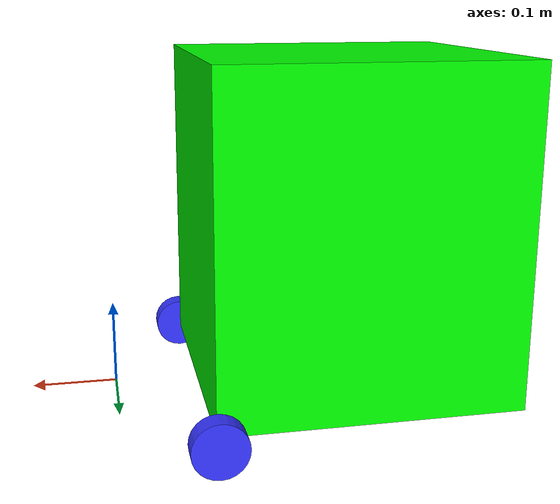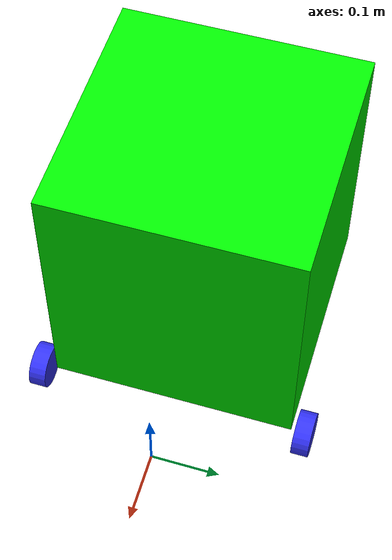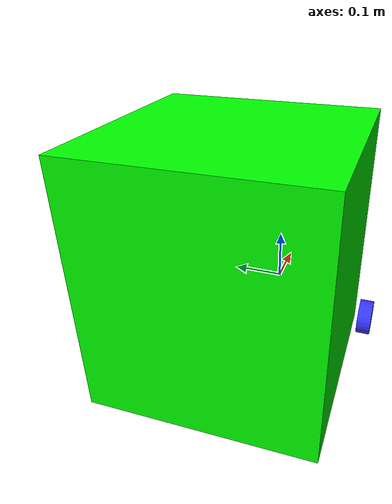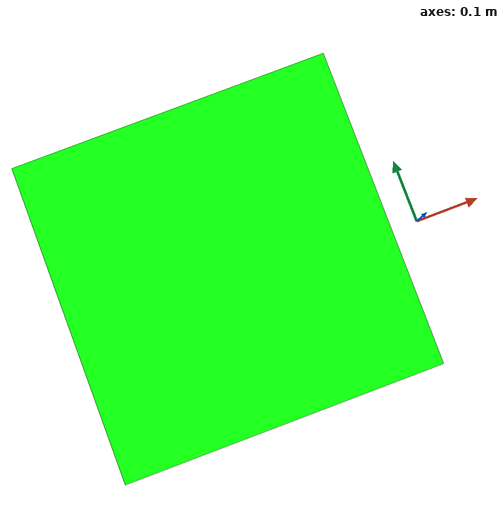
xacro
<?xml version="1.0"?>
<robot xmlns:xacro="http://www.ros.org/wiki/xacro" >

    <xacro:include filename="inertial_macros.xacro"/>

    <material name="white">
        <color rgba="1 1 1 1" />
    </material>

    <material name="orange">
        <color rgba="1 0.3 0.1 1"/>
    </material>

    <material name="blue">
        <color rgba="0.2 0.2 1 1"/>
    </material>

    <material name="black">
        <color rgba="0 0 0 1"/>
    </material>

    <material name="red">
        <color rgba="1 0 0 1"/>
    </material>

    <material name="green">
        <color rgba="0 1 0 1" />
    </material>

    <!-- BASE LINK -->

    <link name="base_link">

    </link>

    <!-- BASE_FOOTPRINT LINK -->

    <joint name="base_footprint_joint" type="fixed">
        <parent link="base_link"/>
        <child link="base_footprint"/>
        <origin xyz="0 0 0" rpy="0 0 0"/>

    </joint>
    <link name="base_footprint">

    </link>

    <!-- CHASSIS LINK -->

     <joint name="chassis_joint" type="fixed">
        <parent link="base_link"/>
        <child link="chassis"/>
        <origin xyz="-0.1 0 0" rpy="0 0 ${pi}"/>
    </joint>

    <link name="chassis">
        <visual>
            <origin xyz="0.18 0 0.2"/>
            <geometry>
                <box size="0.36 0.36 0.4"/>
            </geometry>
            <material name="green"/>
        </visual>
        <collision>
            <origin xyz="0.18 0 0.2"/>
            <geometry>
                <box size="0.36 0.36 0.4"/>
            </geometry>
        </collision>
        <xacro:inertial_box mass="6.5" x="0.36" y="0.36" z="0.4">
            <origin xyz="0.18 0 0.2" rpy="0 0 0"/>
        </xacro:inertial_box>
    </link>

    <gazebo reference="chassis">
        <material>Gazebo/White</material>
    </gazebo>

    <!-- LEFT WHEEL LINK -->

    <joint name="left_wheel_joint" type="continuous">
        <parent link="base_link"/>
        <child link="left_wheel"/>
        <origin xyz="-0.1 0.2 0" rpy="-${pi/2} 0 0" />
        <axis xyz="0 0 1"/>
    </joint>

    <link name="left_wheel">
        <visual>
            <geometry>
                <cylinder radius="0.0325" length="0.025"/>
            </geometry>
            <material name="blue"/>
        </visual>
        <collision>
            <geometry>
                <cylinder radius="0.0325" length="0.025"/>
            </geometry>
        </collision>
        <xacro:inertial_cylinder mass="0.1" length="0.025" radius="0.0325">
            <origin xyz="-0.1 0 0" rpy="0 0 0"/>
        </xacro:inertial_cylinder>
    </link>

    <gazebo reference="left_wheel">
        <material>Gazebo/Blue</material>
    </gazebo>

    <!-- RIGHT WHEEL LINK -->

    <joint name="right_wheel_joint" type="continuous">
        <parent link="base_link"/>
        <child link="right_wheel"/>
        <origin xyz="-0.1 -0.2 0" rpy="${pi/2} 0 0" />
        <axis xyz="0 0 1"/>
    </joint>

    <link name="right_wheel">
        <visual>
            <geometry>
                <cylinder radius="0.0325" length="0.025"/>
            </geometry>
            <material name="blue"/>
        </visual>
        <collision>
            <geometry>
                <cylinder radius="0.0325" length="0.025"/>
            </geometry>
        </collision>
        <xacro:inertial_cylinder mass="0.1" length="0.025" radius="0.0325">
            <origin xyz="-0.1 0 0" rpy="0 0 0"/>
        </xacro:inertial_cylinder>
    </link>

    <gazebo reference="right_wheel">
        <material>Gazebo/Blue</material>
    </gazebo>

    <!-- CASTER WHEEL LINK -->

    <joint name="caster_wheel_joint" type="fixed">
        <parent link="chassis"/>
        <child link="caster_wheel"/>
        <origin xyz="0.24 0 0"/>
    </joint>

    <link name="caster_wheel">
        <visual>
            <geometry>
                <sphere radius="0.0325"/>
            </geometry>
            <material name="black"/>
        </visual>
        <collision>
            <geometry>
                <sphere radius="0.0325"/>
            </geometry>
        </collision>
        <xacro:inertial_sphere mass="0.1" radius="0.0325">
            <origin xyz="0 0 0" rpy="0 0 0"/>
        </xacro:inertial_sphere>
    </link>

    <gazebo reference="caster_wheel">
        <material>Gazebo/Black</material>
        <mu1 value="0.001"/>
        <mu2 value="0.001"/>
    </gazebo>

</robot>
